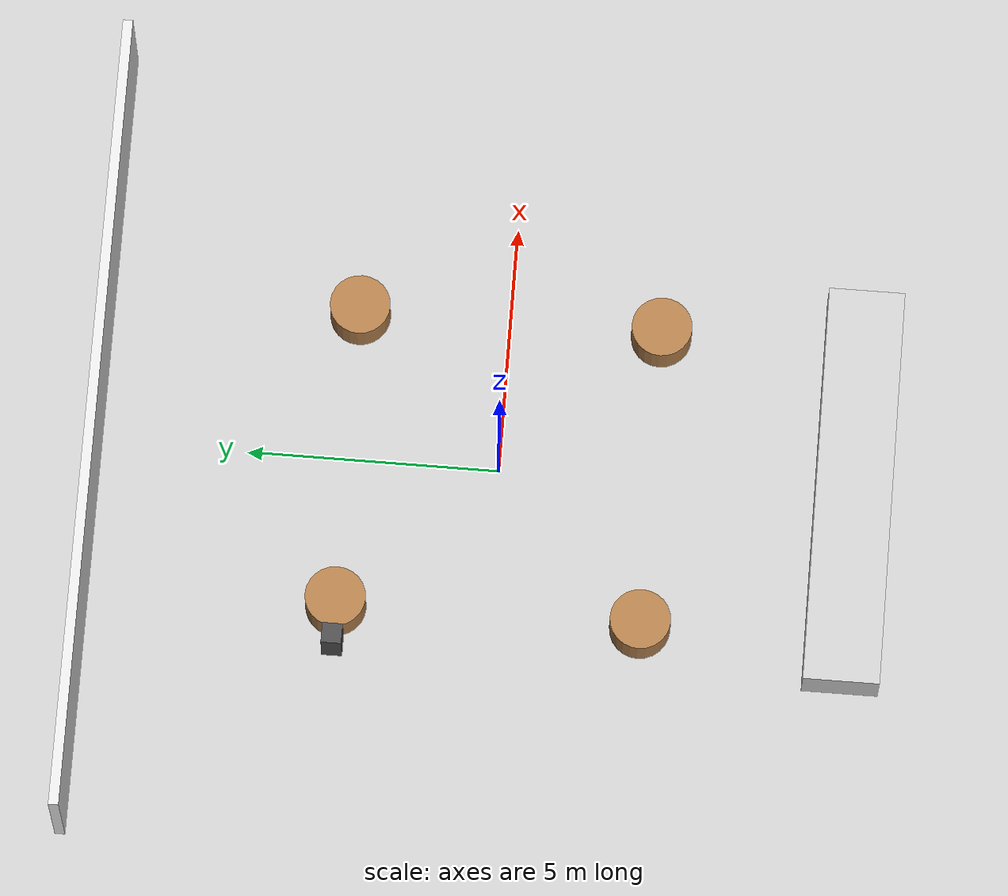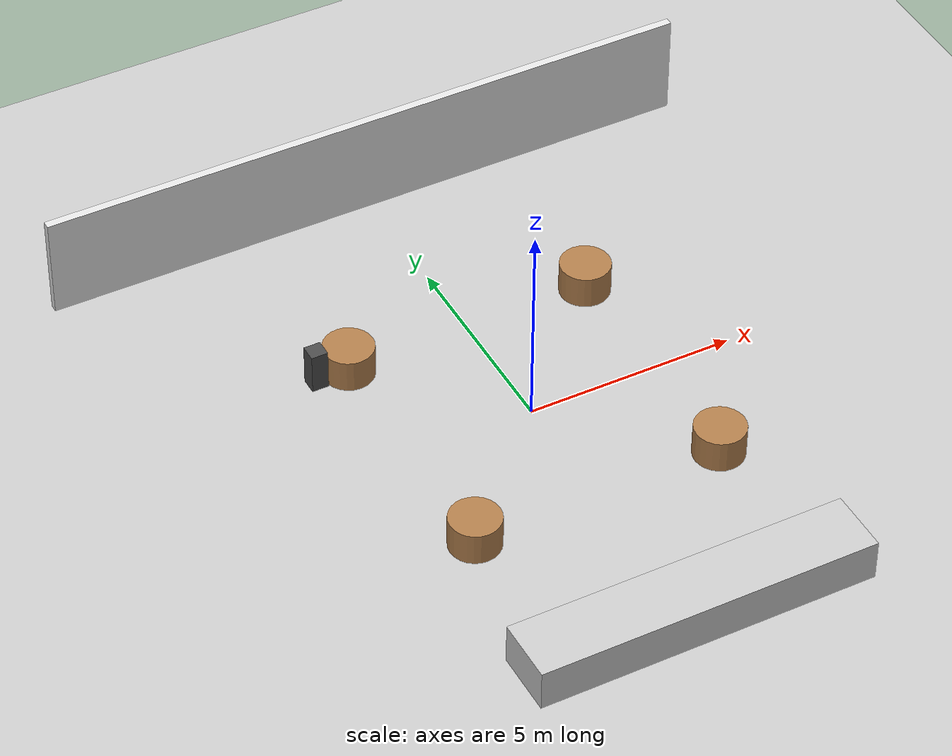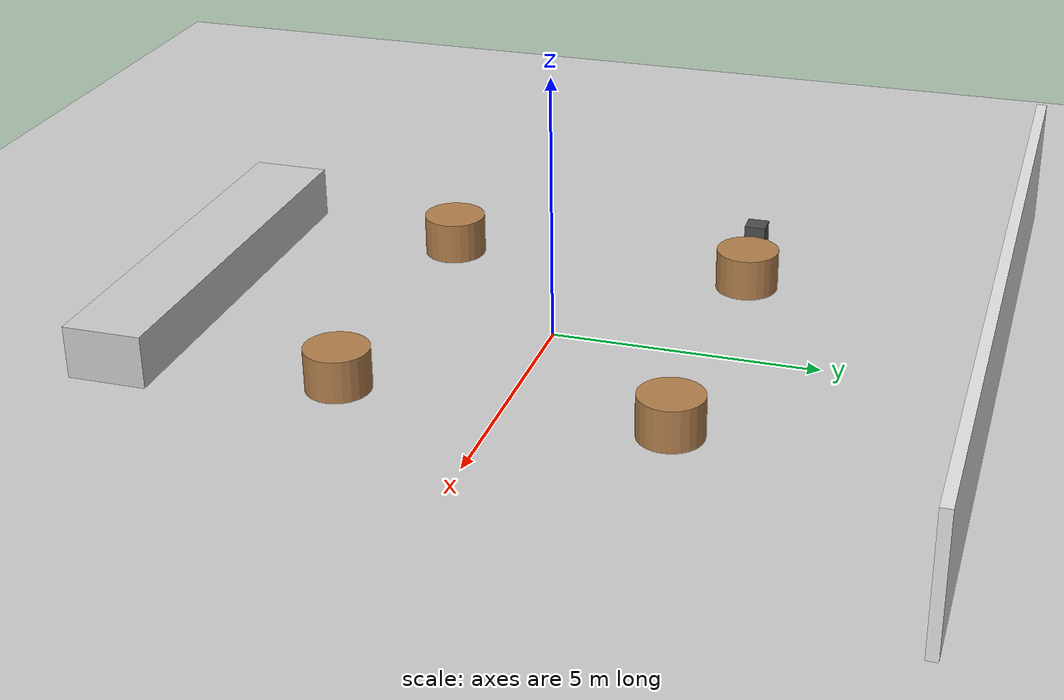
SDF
<?xml version="1.0" ?>
<sdf version="1.6">
  <world name="restaurant">
    <include>
      <uri>model://sun</uri>
    </include>
    <include>
      <uri>model://ground_plane</uri>
    </include>

    <!-- Restaurant tables -->
    <model name="table1">
      <static>true</static>
      <pose>-3 3 0.4 0 0 0</pose>
      <link name="link">
        <collision name="collision">
          <geometry>
            <cylinder>
              <radius>0.6</radius>
              <length>0.8</length>
            </cylinder>
          </geometry>
        </collision>
        <visual name="visual">
          <geometry>
            <cylinder>
              <radius>0.6</radius>
              <length>0.8</length>
            </cylinder>
          </geometry>
          <material>
            <ambient>0.7 0.5 0.3 1</ambient>
          </material>
        </visual>
      </link>
    </model>

    <model name="table2">
      <static>true</static>
      <pose>3 3 0.4 0 0 0</pose>
      <link name="link">
        <collision name="collision">
          <geometry>
            <cylinder>
              <radius>0.6</radius>
              <length>0.8</length>
            </cylinder>
          </geometry>
        </collision>
        <visual name="visual">
          <geometry>
            <cylinder>
              <radius>0.6</radius>
              <length>0.8</length>
            </cylinder>
          </geometry>
          <material>
            <ambient>0.7 0.5 0.3 1</ambient>
          </material>
        </visual>
      </link>
    </model>

    <model name="table3">
      <static>true</static>
      <pose>-3 -3 0.4 0 0 0</pose>
      <link name="link">
        <collision name="collision">
          <geometry>
            <cylinder>
              <radius>0.6</radius>
              <length>0.8</length>
            </cylinder>
          </geometry>
        </collision>
        <visual name="visual">
          <geometry>
            <cylinder>
              <radius>0.6</radius>
              <length>0.8</length>
            </cylinder>
          </geometry>
          <material>
            <ambient>0.7 0.5 0.3 1</ambient>
          </material>
        </visual>
      </link>
    </model>

    <model name="table4">
      <static>true</static>
      <pose>3 -3 0.4 0 0 0</pose>
      <link name="link">
        <collision name="collision">
          <geometry>
            <cylinder>
              <radius>0.6</radius>
              <length>0.8</length>
            </cylinder>
          </geometry>
        </collision>
        <visual name="visual">
          <geometry>
            <cylinder>
              <radius>0.6</radius>
              <length>0.8</length>
            </cylinder>
          </geometry>
          <material>
            <ambient>0.7 0.5 0.3 1</ambient>
          </material>
        </visual>
      </link>
    </model>

    <!-- Chairs -->
    <model name="chair1">
      <static>true</static>
      <pose>-3.8 3 0.5 0 0 0</pose>
      <link name="link">
        <collision name="collision">
          <geometry>
            <box>
              <size>0.4 0.4 1</size>
            </box>
          </geometry>
        </collision>
        <visual name="visual">
          <geometry>
            <box>
              <size>0.4 0.4 1</size>
            </box>
          </geometry>
          <material>
            <ambient>0.3 0.3 0.3 1</ambient>
          </material>
        </visual>
      </link>
    </model>

    <!-- Kitchen counter -->
    <model name="counter">
      <static>true</static>
      <pose>0 -7 0.5 0 0 0</pose>
      <link name="link">
        <collision name="collision">
          <geometry>
            <box>
              <size>8 1.5 1</size>
            </box>
          </geometry>
        </collision>
        <visual name="visual">
          <geometry>
            <box>
              <size>8 1.5 1</size>
            </box>
          </geometry>
          <material>
            <ambient>0.8 0.8 0.8 1</ambient>
          </material>
        </visual>
      </link>
    </model>

    <!-- Restaurant entrance -->
    <model name="entrance_wall">
      <static>true</static>
      <pose>0 8 1.25 0 0 0</pose>
      <link name="link">
        <collision name="collision">
          <geometry>
            <box>
              <size>16 0.2 2.5</size>
            </box>
          </geometry>
        </collision>
        <visual name="visual">
          <geometry>
            <box>
              <size>16 0.2 2.5</size>
            </box>
          </geometry>
          <material>
            <ambient>0.9 0.9 0.9 1</ambient>
          </material>
        </visual>
      </link>
    </model>

  </world>
</sdf>
